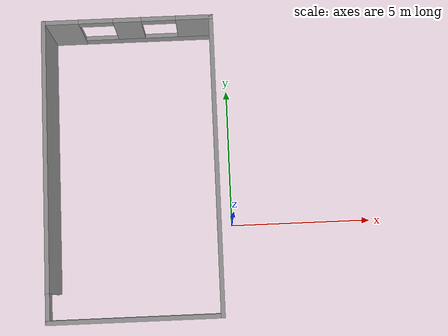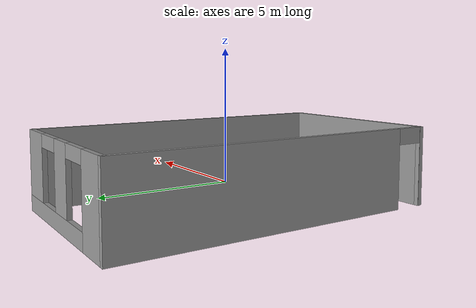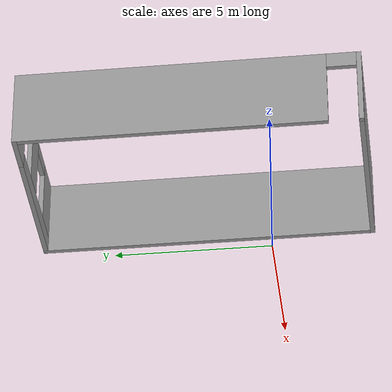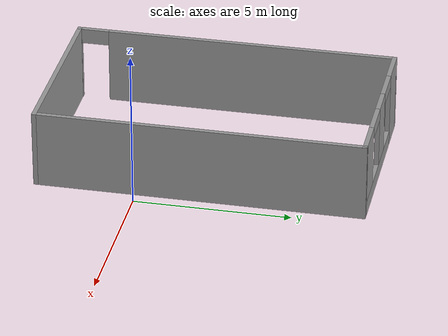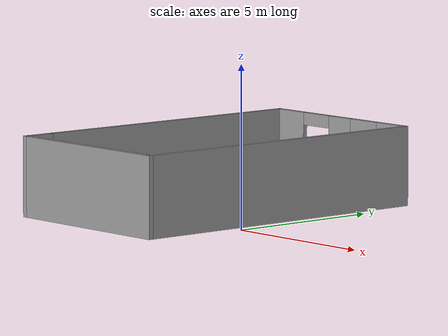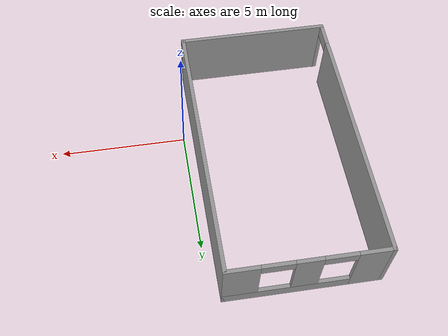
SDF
<?xml version='1.0'?>
<sdf version='1.7'>
  <model name='office_space'>
    <pose>-3.1942 1.977 0 0 -0 0</pose>
    <link name='Wall_2'>
      <pose>-0.194196 5.175 0 0 -0 0</pose>
      <visual name='Wall_2_Visual_0'>
        <pose>-2.34976 0 1.25 0 -0 0</pose>
        <geometry>
          <box>
            <size>1.30048 0.15 2.5</size>
          </box>
        </geometry>
        <material>
          <script>
            <uri>file://media/materials/scripts/gazebo.material</uri>
            <name>Gazebo/Grey</name>
          </script>
          <ambient>1 1 1 1</ambient>
        </material>
        <meta>
          <layer>0</layer>
        </meta>
      </visual>
      <collision name='Wall_2_Collision_0'>
        <geometry>
          <box>
            <size>1.30048 0.15 2.5</size>
          </box>
        </geometry>
        <pose>-2.34976 0 1.25 0 -0 0</pose>
      </collision>
      <visual name='Wall_2_Visual_1'>
        <pose>0.65024 0 0.25 0 -0 0</pose>
        <geometry>
          <box>
            <size>4.69952 0.15 0.5</size>
          </box>
        </geometry>
        <material>
          <script>
            <uri>file://media/materials/scripts/gazebo.material</uri>
            <name>Gazebo/Grey</name>
          </script>
          <ambient>1 1 1 1</ambient>
        </material>
        <meta>
          <layer>0</layer>
        </meta>
      </visual>
      <collision name='Wall_2_Collision_1'>
        <geometry>
          <box>
            <size>4.69952 0.15 0.5</size>
          </box>
        </geometry>
        <pose>0.65024 0 0.25 0 -0 0</pose>
      </collision>
      <visual name='Wall_2_Visual_2'>
        <pose>-0.004491 0 1.5 0 -0 0</pose>
        <geometry>
          <box>
            <size>0.99006 0.15 2</size>
          </box>
        </geometry>
        <material>
          <script>
            <uri>file://media/materials/scripts/gazebo.material</uri>
            <name>Gazebo/Grey</name>
          </script>
          <ambient>1 1 1 1</ambient>
        </material>
        <meta>
          <layer>0</layer>
        </meta>
      </visual>
      <collision name='Wall_2_Collision_2'>
        <geometry>
          <box>
            <size>0.99006 0.15 2</size>
          </box>
        </geometry>
        <pose>-0.004491 0 1.5 0 -0 0</pose>
      </collision>
      <visual name='Wall_2_Visual_3'>
        <pose>2.34527 0 1.5 0 -0 0</pose>
        <geometry>
          <box>
            <size>1.30946 0.15 2</size>
          </box>
        </geometry>
        <material>
          <script>
            <uri>file://media/materials/scripts/gazebo.material</uri>
            <name>Gazebo/Grey</name>
          </script>
          <ambient>1 1 1 1</ambient>
        </material>
        <meta>
          <layer>0</layer>
        </meta>
      </visual>
      <collision name='Wall_2_Collision_3'>
        <geometry>
          <box>
            <size>1.30946 0.15 2</size>
          </box>
        </geometry>
        <pose>2.34527 0 1.5 0 -0 0</pose>
      </collision>
      <visual name='Wall_2_Visual_4'>
        <pose>-1.09952 0 2.3 0 -0 0</pose>
        <geometry>
          <box>
            <size>1.2 0.15 0.4</size>
          </box>
        </geometry>
        <material>
          <script>
            <uri>file://media/materials/scripts/gazebo.material</uri>
            <name>Gazebo/Grey</name>
          </script>
          <ambient>1 1 1 1</ambient>
        </material>
        <meta>
          <layer>0</layer>
        </meta>
      </visual>
      <collision name='Wall_2_Collision_4'>
        <geometry>
          <box>
            <size>1.2 0.15 0.4</size>
          </box>
        </geometry>
        <pose>-1.09952 0 2.3 0 -0 0</pose>
      </collision>
      <visual name='Wall_2_Visual_5'>
        <pose>1.09054 0 2.3 0 -0 0</pose>
        <geometry>
          <box>
            <size>1.2 0.15 0.4</size>
          </box>
        </geometry>
        <material>
          <script>
            <uri>file://media/materials/scripts/gazebo.material</uri>
            <name>Gazebo/Grey</name>
          </script>
          <ambient>1 1 1 1</ambient>
        </material>
        <meta>
          <layer>0</layer>
        </meta>
      </visual>
      <collision name='Wall_2_Collision_5'>
        <geometry>
          <box>
            <size>1.2 0.15 0.4</size>
          </box>
        </geometry>
        <pose>1.09054 0 2.3 0 -0 0</pose>
      </collision>
    </link>
    <link name='Wall_3'>
      <collision name='Wall_3_Collision'>
        <geometry>
          <box>
            <size>10.5 0.15 2.5</size>
          </box>
        </geometry>
        <pose>0 0 1.25 0 -0 0</pose>
      </collision>
      <visual name='Wall_3_Visual'>
        <pose>0 0 1.25 0 -0 0</pose>
        <geometry>
          <box>
            <size>10.5 0.15 2.5</size>
          </box>
        </geometry>
        <material>
          <script>
            <uri>file://media/materials/scripts/gazebo.material</uri>
            <name>Gazebo/Grey</name>
          </script>
          <ambient>1 1 1 1</ambient>
        </material>
        <meta>
          <layer>0</layer>
        </meta>
      </visual>
      <pose>2.7308 -0 0 0 -0 -1.5708</pose>
    </link>
    <link name='Wall_4'>
      <collision name='Wall_4_Collision'>
        <geometry>
          <box>
            <size>6 0.15 2.5</size>
          </box>
        </geometry>
        <pose>0 0 1.25 0 -0 0</pose>
      </collision>
      <visual name='Wall_4_Visual'>
        <pose>0 0 1.25 0 -0 0</pose>
        <geometry>
          <box>
            <size>6 0.15 2.5</size>
          </box>
        </geometry>
        <material>
          <script>
            <uri>file://media/materials/scripts/gazebo.material</uri>
            <name>Gazebo/Grey</name>
          </script>
          <ambient>1 1 1 1</ambient>
        </material>
        <meta>
          <layer>0</layer>
        </meta>
      </visual>
      <pose>-0.194196 -5.175 0 0 -0 3.14159</pose>
    </link>
    <link name='Wall_5'>
      <pose>-3.1192 -0 0 0 -0 1.5708</pose>
      <visual name='Wall_5_Visual_0'>
        <pose>-5.17333 0 1.25 0 -0 0</pose>
        <geometry>
          <box>
            <size>0.153344 0.15 2.5</size>
          </box>
        </geometry>
        <material>
          <script>
            <uri>file://media/materials/scripts/gazebo.material</uri>
            <name>Gazebo/Grey</name>
          </script>
          <ambient>1 1 1 1</ambient>
        </material>
        <meta>
          <layer>0</layer>
        </meta>
      </visual>
      <collision name='Wall_5_Collision_0'>
        <geometry>
          <box>
            <size>0.153344 0.15 2.5</size>
          </box>
        </geometry>
        <pose>-5.17333 0 1.25 0 -0 0</pose>
      </collision>
      <visual name='Wall_5_Visual_1'>
        <pose>0.526672 0 1.25 0 -0 0</pose>
        <geometry>
          <box>
            <size>9.44666 0.15 2.5</size>
          </box>
        </geometry>
        <material>
          <script>
            <uri>file://media/materials/scripts/gazebo.material</uri>
            <name>Gazebo/Grey</name>
          </script>
          <ambient>1 1 1 1</ambient>
        </material>
        <meta>
          <layer>0</layer>
        </meta>
      </visual>
      <collision name='Wall_5_Collision_1'>
        <geometry>
          <box>
            <size>9.44666 0.15 2.5</size>
          </box>
        </geometry>
        <pose>0.526672 0 1.25 0 -0 0</pose>
      </collision>
      <visual name='Wall_5_Visual_2'>
        <pose>-4.64666 0 2.25 0 -0 0</pose>
        <geometry>
          <box>
            <size>0.9 0.15 0.5</size>
          </box>
        </geometry>
        <material>
          <script>
            <uri>file://media/materials/scripts/gazebo.material</uri>
            <name>Gazebo/Grey</name>
          </script>
          <ambient>1 1 1 1</ambient>
        </material>
        <meta>
          <layer>0</layer>
        </meta>
      </visual>
      <collision name='Wall_5_Collision_2'>
        <geometry>
          <box>
            <size>0.9 0.15 0.5</size>
          </box>
        </geometry>
        <pose>-4.64666 0 2.25 0 -0 0</pose>
      </collision>
    </link>
    <static>1</static>
  </model>
</sdf>
